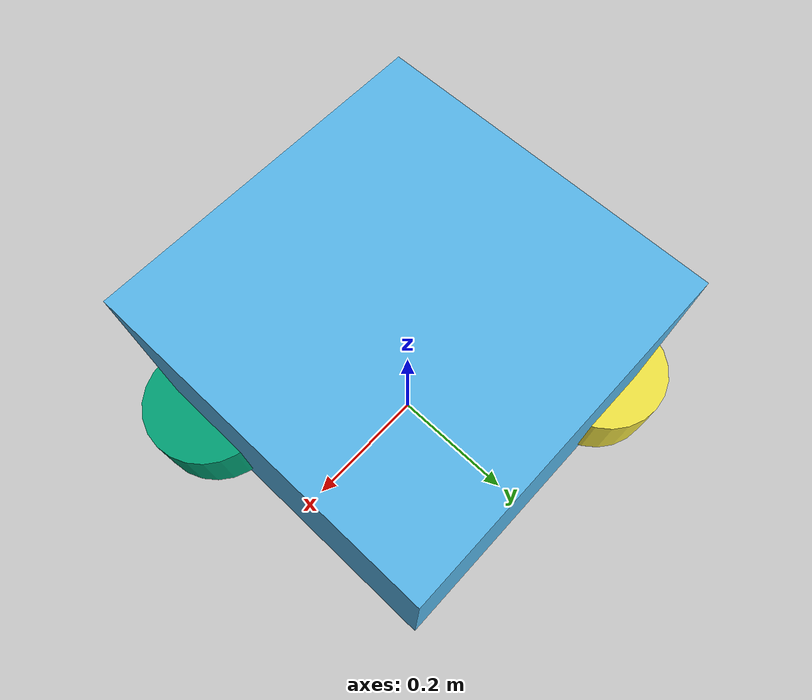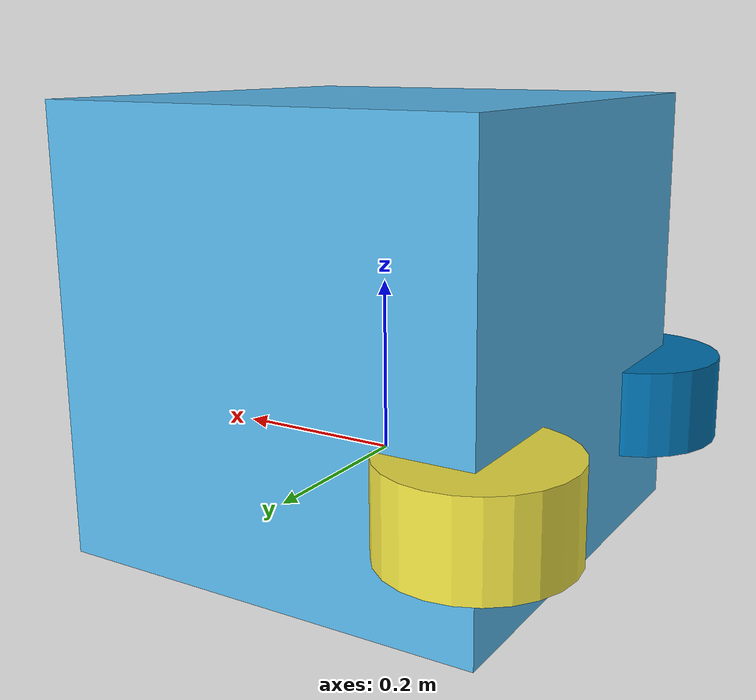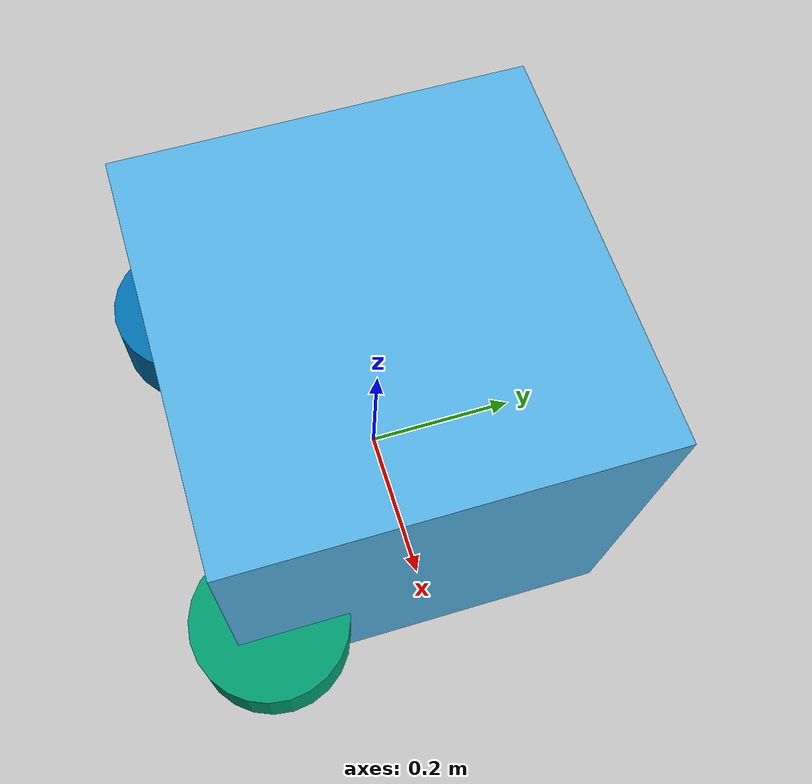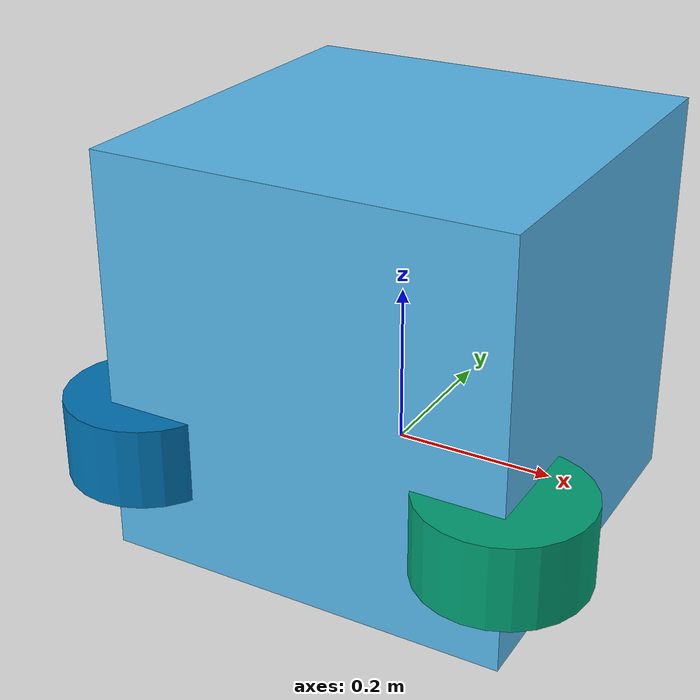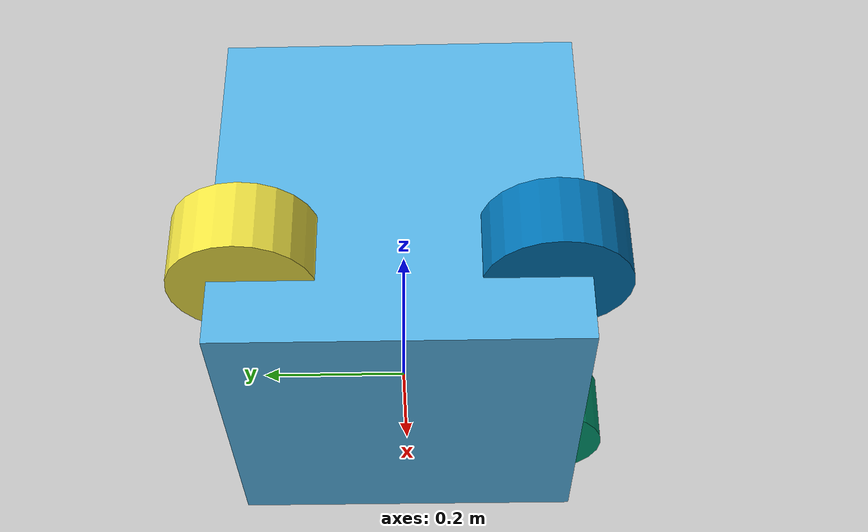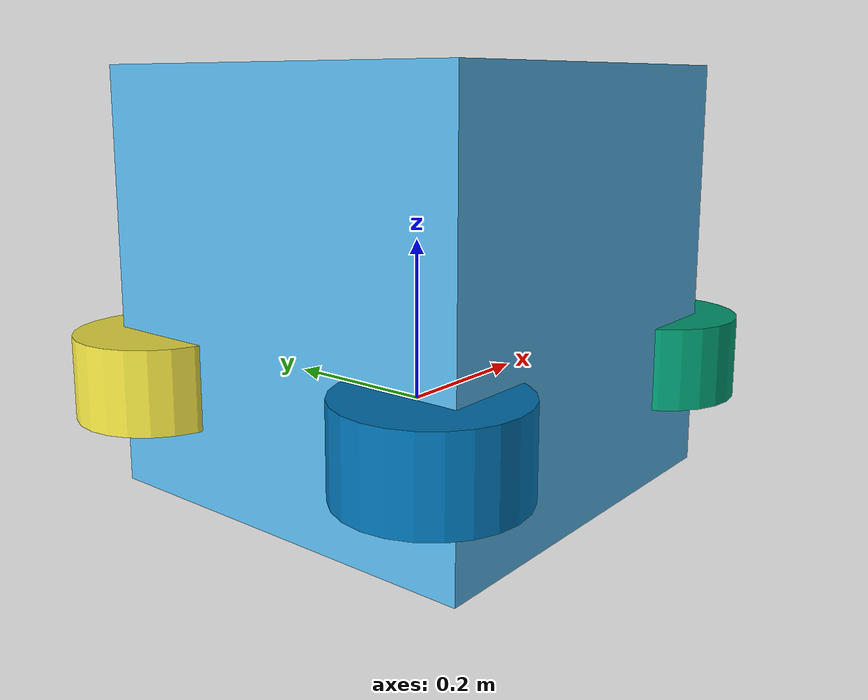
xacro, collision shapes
<?xml version="1.0"?>

<robot name="ranger_mini" xmlns:xacro="http://ros.org/wiki/xacro">
 <link name="base_footprint"/>

  <joint name="base_joint" type="fixed">
    <parent link="base_footprint"/>
    <child link="base_link"/>
    <origin xyz="0.0 0.0 0.15" rpy="0 0 0"/>
  </joint>

    <!-- Base link -->
    <link name="base_link">
        <visual>
            <origin xyz="0 0 0" rpy="1.57 0 3.14 " />
            <geometry>
                <mesh filename="file://$(find ranger_mini)/meshes/ranger_base.dae" />
            </geometry>
        </visual>
        <collision>
            <origin xyz="0 0 0.008" rpy="0 0 0" />
            <geometry>
                <box size="0.5 0.5 0.5"/>
            </geometry>
        </collision>
    </link>

        <link name="fr_wheel_link">
            <inertial>
                <mass value="8" />
                <origin xyz="0 0 0" />
                <inertia ixx="0.1171" ixy="0" ixz="0" iyy="0.1361" iyz="0" izz="0.1171" />
            </inertial>
            <visual>
                <origin xyz="0.23 0.2 0.1" rpy="1.57 0 0" />
                <geometry>
                    <mesh filename="file://$(find ranger_mini)/meshes/fl.dae" />
                </geometry>
            </visual>
            <collision>
                <origin xyz="0 0 0" rpy="0 0 0" />
                <geometry>
                    <cylinder length="0.1" radius="0.1" />
                </geometry>
            </collision>
        </link>

        <joint name="fr_wheel" type="fixed">
            <origin xyz="0.23 -0.206 -0.1" rpy="0 0 0" />
            <parent link="base_link"/>
            <child link="fr_wheel_link"/>
            <axis xyz="0 0 1" rpy="0 0 0" />
        </joint>

        <link name="rl_wheel_link">
            <inertial>
                <mass value="8" />
                <origin xyz="0 0 0" />
                <inertia ixx="0.1171" ixy="0" ixz="0" iyy="0.1361" iyz="0" izz="0.1171" />
            </inertial>
            <visual>
                <origin xyz="0.23 -0.2 0.1" rpy="1.57 0 0" />
                <geometry>
                    <mesh filename="file://$(find ranger_mini)/meshes/fr.dae" />
                </geometry>
            </visual>
            <collision>
                <origin xyz="0 0 0" rpy="0 0 0" />
                <geometry>
                    <cylinder length="0.1" radius="0.1" />
                </geometry>
            </collision>
        </link>

        <joint name="rl_wheel" type="continuous">
            <origin xyz="-0.23 0.206 -0.1" rpy="0 0 0" />
            <parent link="base_link"/>
            <child link="rl_wheel_link"/>
            <axis xyz="0 0 1" rpy="0 0 0" />
        </joint>

        <link name="rr_wheel_link">
            <inertial>
                <mass value="8" />
                <origin xyz="0 0 0" />
                <inertia ixx="0.1171" ixy="0" ixz="0" iyy="0.1361" iyz="0" izz="0.1171" />
            </inertial>
            <visual>
                <origin xyz="0.23 0.2 0.1" rpy="1.57 0 0" />
                <geometry>
                    <mesh filename="file://$(find ranger_mini)/meshes/fl.dae" />
                </geometry>
            </visual>
            <collision>
                <origin xyz="0 0 0" rpy="0 0 0" />
                <geometry>
                    <cylinder length="0.1" radius="0.1" />
                </geometry>
            </collision>
        </link>

        <joint name="rr_wheel" type="continuous">
            <origin xyz="-0.23 -0.206 -0.1" rpy="0 0 0" />
            <parent link="base_link"/>
            <child link="rr_wheel_link"/>
            <axis xyz="0 0 1" rpy="0 0 0" />
        </joint>

   <gazebo reference="fl_wheel_link">
        <mu1>100</mu1>
        <mu2>100</mu2>
        <kp>10000000.0</kp>
        <kd>1.0</kd>
        <minDepth>0.01</minDepth>
        <fdir1>1 0 0</fdir1>
        <maxContacts value="64"/>
    </gazebo>
    <gazebo reference="fr_wheel_link">
        <mu1>100</mu1>
        <mu2>100</mu2>
        <kp>10000000.0</kp>
        <kd>1.0</kd>
        <minDepth>0.01</minDepth>
        <fdir1>1 0 0</fdir1>
        <maxContacts value="64"/>
    </gazebo>
    <gazebo reference="rl_wheel_link">
        <mu1>100</mu1>
        <mu2>100</mu2>
        <kp>10000000.0</kp>
        <kd>1.0</kd>
        <minDepth>0.01</minDepth>
        <fdir1>1 0 0</fdir1>
        <maxContacts value="64"/>
    </gazebo>
    <gazebo reference="rr_wheel_link">
        <mu1>100</mu1>
        <mu2>100</mu2>
        <kp>10000000.0</kp>
        <kd>1.0</kd>
        <minDepth>0.01</minDepth>
        <fdir1>1 0 0</fdir1>
        <maxContacts value="64"/>
    </gazebo>

</robot>
